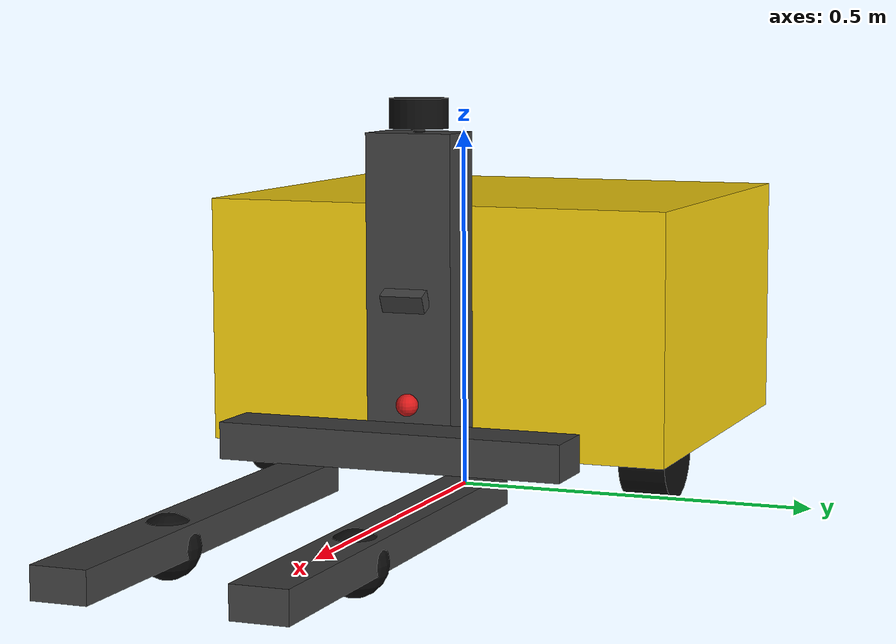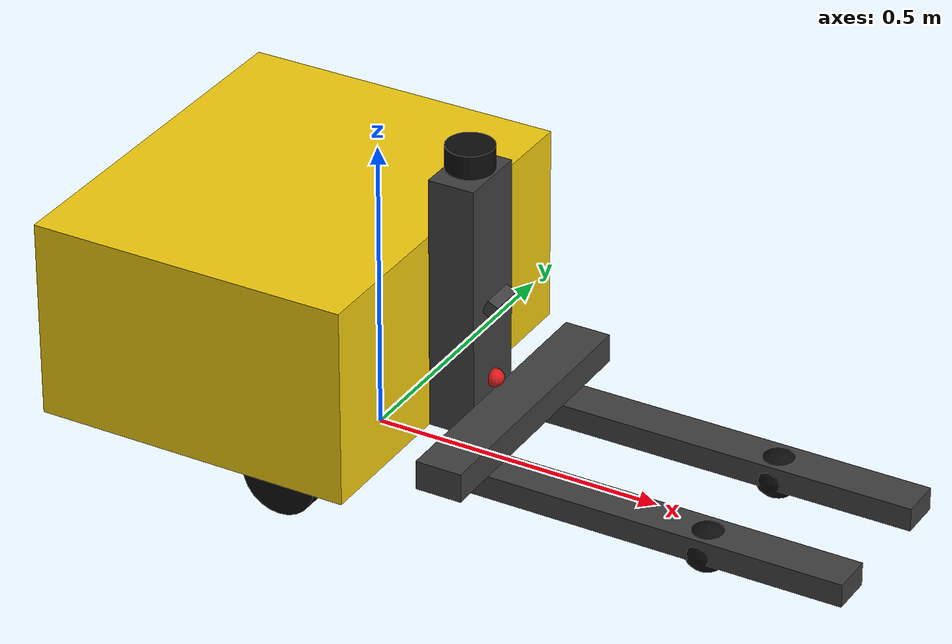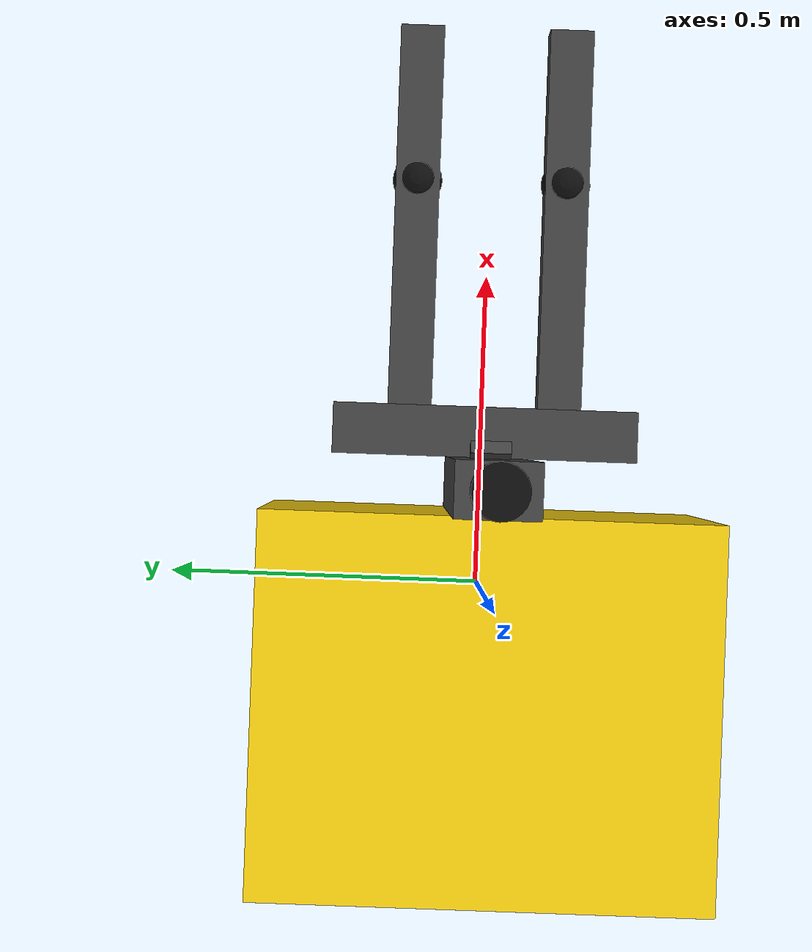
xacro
<?xml version="1.0"?>
<robot xmlns:xacro="http://www.ros.org/wiki/xacro"  name="robot">

    <xacro:arg name="use_ros2_control" default="false"/>
    <xacro:arg name="sim_mode" default="true"/>
    <xacro:arg name="controllers_file" default="config/my_controllers.yaml"/>

    <xacro:include filename="robot_core.xacro" />

    <!-- Simülasyon: gazebo_control kullan (ros2_control gerektirmez) -->
    <xacro:if value="$(arg use_ros2_control)">
        <xacro:include filename="ros2_control.xacro" />
    </xacro:if>
    <xacro:unless value="$(arg use_ros2_control)">
        <xacro:include filename="gazebo_control.xacro" />
        <xacro:include filename="fork_control.xacro" />
    </xacro:unless>

    <xacro:include filename="lidar.xacro" />
    <xacro:include filename="depth_camera.xacro" />

</robot>

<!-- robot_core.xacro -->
<robot xmlns:xacro="http://www.ros.org/wiki/xacro">

    <xacro:include filename="inertial_macros.xacro"/>

    <!-- ── Arka gövde (counterweight) ── -->
    <xacro:property name="body_length" value="0.55"/>
    <xacro:property name="body_width"  value="0.66"/>
    <xacro:property name="body_height" value="0.34"/>
    <xacro:property name="body_mass"   value="15.0"/>

    <!-- ── Mast (dikey taşıma direği) ── -->
    <xacro:property name="mast_depth"  value="0.08"/>
    <xacro:property name="mast_width"  value="0.12"/>
    <xacro:property name="mast_height" value="0.44"/>
    <xacro:property name="mast_mass"   value="2.0"/>

    <!-- ── Fork taşıyıcı (carriage, mast üzerinde kayar) ── -->
    <xacro:property name="carriage_depth"  value="0.08"/>
    <xacro:property name="carriage_width"  value="0.48"/>
    <xacro:property name="carriage_height" value="0.05"/>
    <xacro:property name="carriage_mass"   value="1.5"/>

    <!-- ── Fork tine'ları (iki adet yatay maşa) ── -->
    <xacro:property name="fork_length"   value="0.65"/>
    <xacro:property name="fork_width"    value="0.07"/>
    <xacro:property name="fork_height"   value="0.04"/>
    <xacro:property name="fork_y_offset" value="0.12"/>
    <xacro:property name="fork_mass"     value="0.8"/>

    <!-- ── Arka sürüş tekerlekleri ── -->
    <xacro:property name="wheel_radius"    value="0.065"/>
    <xacro:property name="wheel_thickness" value="0.065"/>
    <xacro:property name="wheel_mass"      value="1.5"/>
    <xacro:property name="wheel_y_offset"  value="0.28"/>

    <!-- ── Ön yük tekerlekleri (fork altında, döner) ── -->
    <xacro:property name="caster_radius"    value="0.04"/>
    <xacro:property name="caster_mass"      value="0.3"/>
    <xacro:property name="caster_x_fwd"     value="0.65"/>
    <xacro:property name="caster_y_offset"  value="0.12"/>

    <xacro:property name="chassis_x_offset" value="-0.15"/>

    <!-- Renkler -->
    <material name="forklift_yellow"><color rgba="0.95 0.80 0.05 1"/></material>
    <material name="dark_gray">      <color rgba="0.25 0.25 0.25 1"/></material>
    <material name="black">          <color rgba="0.05 0.05 0.05 1"/></material>
    <material name="white">          <color rgba="0.92 0.92 0.92 1"/></material>
    <material name="red">            <color rgba="0.85 0.10 0.10 1"/></material>
    <material name="blue">           <color rgba="0.15 0.25 0.85 1"/></material>

    <!-- ================================================================
         BASE LINK  –  zemin, arka tekerlek aksı merkezi
    ================================================================ -->
    <link name="base_link"/>

    <joint name="base_footprint_joint" type="fixed">
        <parent link="base_link"/>
        <child  link="base_footprint"/>
        <origin xyz="0 0 0" rpy="0 0 0"/>
    </joint>
    <link name="base_footprint"/>

    <joint name="chassis_joint" type="fixed">
        <parent link="base_link"/>
        <child  link="chassis"/>
        <!-- x: gövde arka tekerlek aksına göre hafif öne kayık → CoM ±0 seviyesinde tutulur
             z: wheel_radius + body_height/2 → gövde alt yüzü zemin üstünde (tekerlek üstünde) -->
        <origin xyz="${chassis_x_offset} 0 ${wheel_radius + body_height/2}" rpy="0 0 0"/>
    </joint>
    <link name="chassis">
        <visual>
            <geometry>
                <box size="${body_length} ${body_width} ${body_height}"/>
            </geometry>
            <material name="forklift_yellow"/>
        </visual>
        <collision>
            <geometry>
                <box size="${body_length} ${body_width} ${body_height}"/>
            </geometry>
        </collision>
        <xacro:inertial_box mass="${body_mass}"
                            x="${body_length}" y="${body_width}" z="${body_height}">
            <origin xyz="0 0 0" rpy="0 0 0"/>
        </xacro:inertial_box>
    </link>
    <gazebo reference="chassis"><material>Gazebo/Yellow</material></gazebo>

    <joint name="mast_joint" type="fixed">
        <parent link="chassis"/>
        <child  link="mast"/>
        <origin xyz="${body_length/2 + mast_depth/2} 0 ${mast_height/2 - body_height/2}"
                rpy="0 0 0"/>
    </joint>
    <link name="mast">
        <visual>
            <geometry>
                <box size="${mast_depth} ${mast_width} ${mast_height}"/>
            </geometry>
            <material name="dark_gray"/>
        </visual>
        <collision>
            <geometry>
                <box size="${mast_depth} ${mast_width} ${mast_height}"/>
            </geometry>
        </collision>
        <xacro:inertial_box mass="${mast_mass}"
                            x="${mast_depth}" y="${mast_width}" z="${mast_height}">
            <origin xyz="0 0 0" rpy="0 0 0"/>
        </xacro:inertial_box>
    </link>
    <gazebo reference="mast"><material>Gazebo/DarkGray</material></gazebo>

    <joint name="fork_carriage_joint" type="prismatic">
        <parent link="mast"/>
        <child  link="fork_carriage"/>
        <origin xyz="${mast_depth/2 + carriage_depth/2}
                     0
                     ${-mast_height/2 + carriage_height/2 + 0.005}"
                rpy="0 0 0"/>
        <axis xyz="0 0 1"/>
        <limit lower="0.0" upper="0.30" effort="500" velocity="0.3"/>
        <!-- friction=0 (Gazebo ODE friction güvenilmez); kontrolcü gravity compensation yapar -->
        <dynamics damping="200.0" friction="0.0"/>
    </joint>
    <link name="fork_carriage">
        <visual>
            <geometry>
                <box size="${carriage_depth} ${carriage_width} ${carriage_height}"/>
            </geometry>
            <material name="dark_gray"/>
        </visual>
        <collision>
            <geometry>
                <box size="${carriage_depth} ${carriage_width} ${carriage_height}"/>
            </geometry>
        </collision>
        <xacro:inertial_box mass="${carriage_mass}"
                            x="${carriage_depth}" y="${carriage_width}" z="${carriage_height}">
            <origin xyz="0 0 0" rpy="0 0 0"/>
        </xacro:inertial_box>
    </link>
    <gazebo reference="fork_carriage"><material>Gazebo/DarkGray</material></gazebo>

    <!-- ================================================================
         FORK TINE'LARI – sol ve sağ maşa
    ================================================================ -->
    <xacro:macro name="fork_tine" params="prefix y_sign">
        <joint name="${prefix}_fork_joint" type="fixed">
            <parent link="fork_carriage"/>
            <child  link="${prefix}_fork"/>
            <origin xyz="${fork_length/2}
                         ${y_sign * fork_y_offset}
                         ${-(carriage_height + fork_height)/2}"
                    rpy="0 0 0"/>
        </joint>
        <link name="${prefix}_fork">
            <visual>
                <geometry>
                    <box size="${fork_length} ${fork_width} ${fork_height}"/>
                </geometry>
                <material name="dark_gray"/>
            </visual>
            <collision>
                <geometry>
                    <box size="${fork_length} ${fork_width} ${fork_height}"/>
                </geometry>
            </collision>
            <xacro:inertial_box mass="${fork_mass}"
                                x="${fork_length}" y="${fork_width}" z="${fork_height}">
                <origin xyz="0 0 0" rpy="0 0 0"/>
            </xacro:inertial_box>
        </link>
        <gazebo reference="${prefix}_fork"><material>Gazebo/DarkGray</material></gazebo>
    </xacro:macro>

    <xacro:fork_tine prefix="left"  y_sign=" 1"/>
    <xacro:fork_tine prefix="right" y_sign="-1"/>

    <joint name="left_wheel_joint" type="continuous">
        <parent link="base_link"/>
        <child  link="left_wheel"/>
        <origin xyz="0 ${wheel_y_offset} ${wheel_radius}" rpy="${-pi/2} 0 0"/>
        <axis xyz="0 0 1"/>
    </joint>
    <link name="left_wheel">
        <visual>
            <geometry>
                <cylinder radius="${wheel_radius}" length="${wheel_thickness}"/>
            </geometry>
            <material name="black"/>
        </visual>
        <collision>
            <geometry>
                <sphere radius="${wheel_radius}"/>
            </geometry>
        </collision>
        <xacro:inertial_cylinder mass="${wheel_mass}"
                                 length="${wheel_thickness}" radius="${wheel_radius}">
            <origin xyz="0 0 0" rpy="0 0 0"/>
        </xacro:inertial_cylinder>
    </link>
    <gazebo reference="left_wheel"><material>Gazebo/Black</material></gazebo>

    <joint name="right_wheel_joint" type="continuous">
        <parent link="base_link"/>
        <child  link="right_wheel"/>
        <origin xyz="0 ${-wheel_y_offset} ${wheel_radius}" rpy="${pi/2} 0 0"/>
        <axis xyz="0 0 -1"/>
    </joint>
    <link name="right_wheel">
        <visual>
            <geometry>
                <cylinder radius="${wheel_radius}" length="${wheel_thickness}"/>
            </geometry>
            <material name="black"/>
        </visual>
        <collision>
            <geometry>
                <sphere radius="${wheel_radius}"/>
            </geometry>
        </collision>
        <xacro:inertial_cylinder mass="${wheel_mass}"
                                 length="${wheel_thickness}" radius="${wheel_radius}">
            <origin xyz="0 0 0" rpy="0 0 0"/>
        </xacro:inertial_cylinder>
    </link>
    <gazebo reference="right_wheel"><material>Gazebo/Black</material></gazebo>

    <!-- ================================================================
         ÖN YÜK TEKERLEKLERİ – fork altında, döner (castor)
    ================================================================ -->
    <xacro:macro name="load_wheel" params="prefix y_sign">
        <joint name="${prefix}_load_wheel_joint" type="fixed">
            <parent link="base_link"/>
            <child  link="${prefix}_load_wheel"/>
            <origin xyz="${caster_x_fwd} ${y_sign * caster_y_offset} ${caster_radius}"
                    rpy="0 0 0"/>
        </joint>
        <link name="${prefix}_load_wheel">
            <visual>
                <geometry><sphere radius="${caster_radius}"/></geometry>
                <material name="black"/>
            </visual>
            <collision>
                <geometry><sphere radius="${caster_radius}"/></geometry>
            </collision>
            <xacro:inertial_sphere mass="${caster_mass}" radius="${caster_radius}">
                <origin xyz="0 0 0" rpy="0 0 0"/>
            </xacro:inertial_sphere>
        </link>
        <gazebo reference="${prefix}_load_wheel">
            <material>Gazebo/Black</material>
            <mu1 value="0.001"/>
            <mu2 value="0.001"/>
        </gazebo>
    </xacro:macro>

    <xacro:load_wheel prefix="front_left"  y_sign=" 1"/>
    <xacro:load_wheel prefix="front_right" y_sign="-1"/>

    <joint name="front_led_joint" type="fixed">
        <parent link="mast"/>
        <child  link="front_led"/>
        <origin xyz="${mast_depth/2 + 0.005} 0 ${-mast_height/2 + 0.08}" rpy="0 0 0"/>
    </joint>
    <link name="front_led">
        <visual>
            <geometry><sphere radius="0.015"/></geometry>
            <material name="red"/>
        </visual>
    </link>
    <gazebo reference="front_led"><material>Gazebo/RedGlow</material></gazebo>

    <joint name="rear_caster_joint" type="fixed">
        <parent link="chassis"/>
        <child  link="rear_caster"/>
        <!-- chassis frame'de: gövdenin tam arka-alt köşesi -->
        <origin xyz="${-body_length/2 + caster_radius} 0 ${-body_height/2 + caster_radius - wheel_radius}"
                rpy="0 0 0"/>
    </joint>
    <link name="rear_caster">
        <visual>
            <geometry><sphere radius="${caster_radius}"/></geometry>
            <material name="black"/>
        </visual>
        <collision>
            <geometry><sphere radius="${caster_radius}"/></geometry>
        </collision>
        <xacro:inertial_sphere mass="${caster_mass}" radius="${caster_radius}">
            <origin xyz="0 0 0" rpy="0 0 0"/>
        </xacro:inertial_sphere>
    </link>
    <gazebo reference="rear_caster">
        <material>Gazebo/Black</material>
        <mu1 value="0.001"/>
        <mu2 value="0.001"/>
    </gazebo>

    <joint name="rear_led_joint" type="fixed">
        <parent link="chassis"/>
        <child  link="rear_led"/>
        <origin xyz="${-body_length/2 + 0.005} 0 ${body_height/4}" rpy="0 0 0"/>
    </joint>
    <link name="rear_led">
        <visual>
            <geometry><sphere radius="0.015"/></geometry>
            <material name="blue"/>
        </visual>
    </link>
    <gazebo reference="rear_led"><material>Gazebo/BlueGlow</material></gazebo>

</robot>

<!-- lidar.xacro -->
<robot xmlns:xacro="http://www.ros.org/wiki/xacro">

    <joint name="laser_joint" type="fixed">
        <parent link="mast"/>
        <child  link="laser_frame"/>
        <!-- mast tepesinin biraz üstü, tam ortada -->
        <!-- mast tepesine yakın: z = mast_height/2 + küçük stand -->
        <origin xyz="0 0 ${0.44/2 + 0.025}" rpy="0 0 0"/>
    </joint>

    <link name="laser_frame">
        <visual>
            <geometry>
                <cylinder radius="0.04" length="0.04"/>
            </geometry>
            <material name="black"/>
        </visual>
        <visual>
            <origin xyz="0 0 -0.04"/>
            <geometry>
                <cylinder radius="0.008" length="0.08"/>
            </geometry>
            <material name="black"/>
        </visual>
        <collision>
            <geometry>
                <cylinder radius="0.04" length="0.04"/>
            </geometry>
        </collision>
        <inertial>
            <mass value="0.15"/>
            <inertia ixx="0.0001" ixy="0" ixz="0"
                     iyy="0.0001" iyz="0" izz="0.0001"/>
        </inertial>
    </link>

    <gazebo reference="laser_frame">
        <material>Gazebo/Black</material>
        <sensor name="laser" type="ray">
            <pose>0 0 0 0 0 0</pose>
            <visualize>false</visualize>
            <update_rate>10</update_rate>
            <ray>
                <scan>
                    <horizontal>
                        <samples>360</samples>
                        <min_angle>-3.14159</min_angle>
                        <max_angle>3.14159</max_angle>
                    </horizontal>
                </scan>
                <range>
                    <min>0.20</min>
                    <max>12.0</max>
                    <resolution>0.01</resolution>
                </range>
                <noise>
                    <type>gaussian</type>
                    <mean>0.0</mean>
                    <stddev>0.01</stddev>
                </noise>
            </ray>
            <plugin name="laser_controller" filename="libgazebo_ros_ray_sensor.so">
                <ros>
                    <argument>~/out:=scan</argument>
                </ros>
                <output_type>sensor_msgs/LaserScan</output_type>
                <frame_name>laser_frame</frame_name>
            </plugin>
        </sensor>
    </gazebo>

</robot>

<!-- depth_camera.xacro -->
<robot xmlns:xacro="http://www.ros.org/wiki/xacro">

    <joint name="camera_joint" type="fixed">
        <parent link="mast"/>
        <child  link="camera_link"/>
        <!-- mast ön yüzünde, orta yükseklikte, hafif aşağı bakan -->
        <origin xyz="${0.08/2 + 0.012} 0 0.0" rpy="0 0.44 0"/>
    </joint>

    <link name="camera_link">
        <visual>
            <geometry>
                <box size="0.020 0.060 0.025"/>
            </geometry>
            <material name="dark_gray"/>
        </visual>
        <collision>
            <geometry>
                <box size="0.020 0.060 0.025"/>
            </geometry>
        </collision>
        <inertial>
            <mass value="0.08"/>
            <inertia ixx="0.00001" ixy="0" ixz="0"
                     iyy="0.00001" iyz="0" izz="0.00001"/>
        </inertial>
    </link>

    <!-- Optik frame: kameranın görüntü ekseni +Z, sağ +X (ROS konvansiyonu) -->
    <joint name="camera_optical_joint" type="fixed">
        <parent link="camera_link"/>
        <child  link="camera_link_optical"/>
        <origin xyz="0 0 0" rpy="${-pi/2} 0 ${-pi/2}"/>
    </joint>
    <link name="camera_link_optical"/>

    <gazebo reference="camera_link">
        <material>Gazebo/DarkGray</material>
        <sensor name="camera" type="depth">
            <pose>0 0 0 0 0 0</pose>
            <visualize>false</visualize>
            <update_rate>15</update_rate>
            <camera>
                <horizontal_fov>1.089</horizontal_fov>
                <image>
                    <format>B8G8R8</format>
                    <width>640</width>
                    <height>480</height>
                </image>
                <clip>
                    <near>0.05</near>
                    <far>5.0</far>
                </clip>
                <noise>
                    <type>gaussian</type>
                    <mean>0.0</mean>
                    <stddev>0.005</stddev>
                </noise>
            </camera>
            <plugin name="camera_controller" filename="libgazebo_ros_camera.so">
                <frame_name>camera_link_optical</frame_name>
                <min_depth>0.05</min_depth>
                <max_depth>5.0</max_depth>
            </plugin>
        </sensor>
    </gazebo>

</robot>
